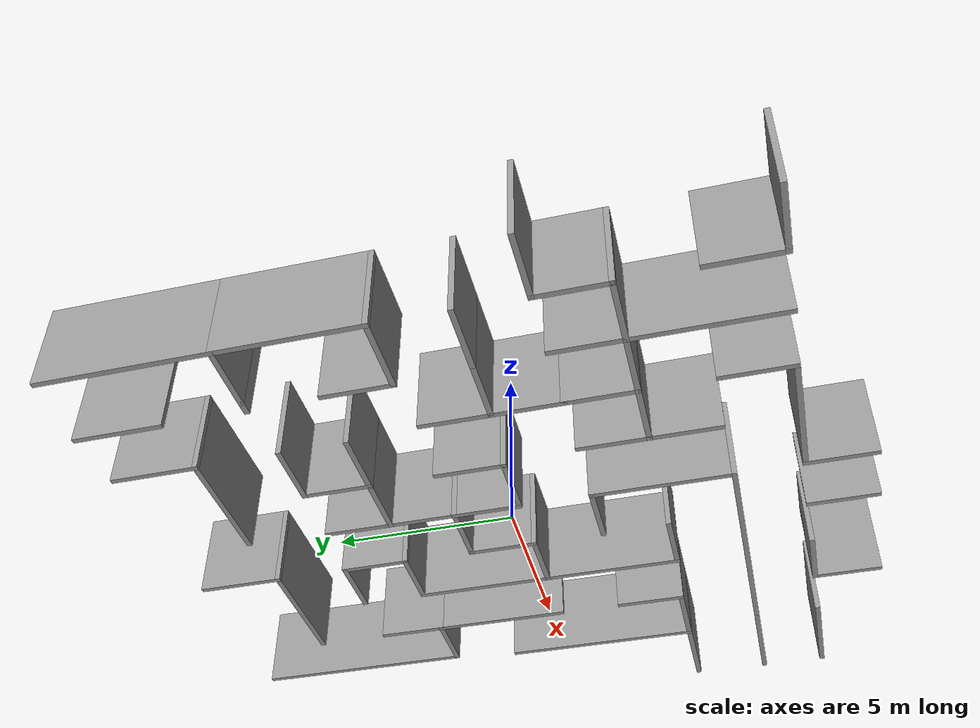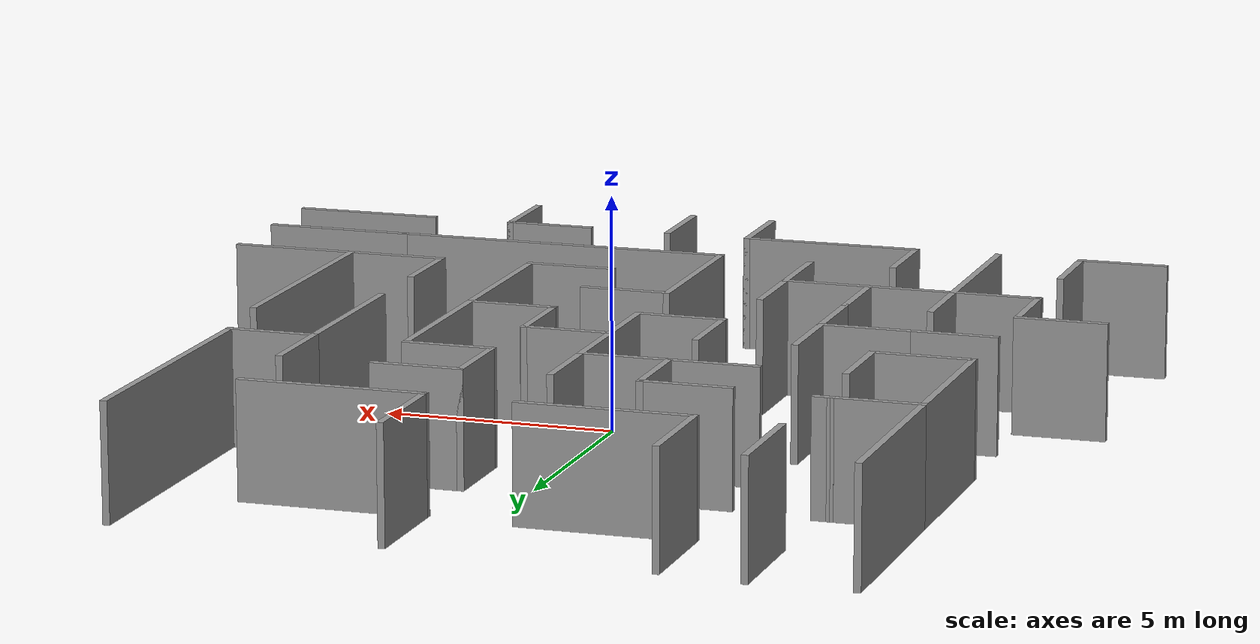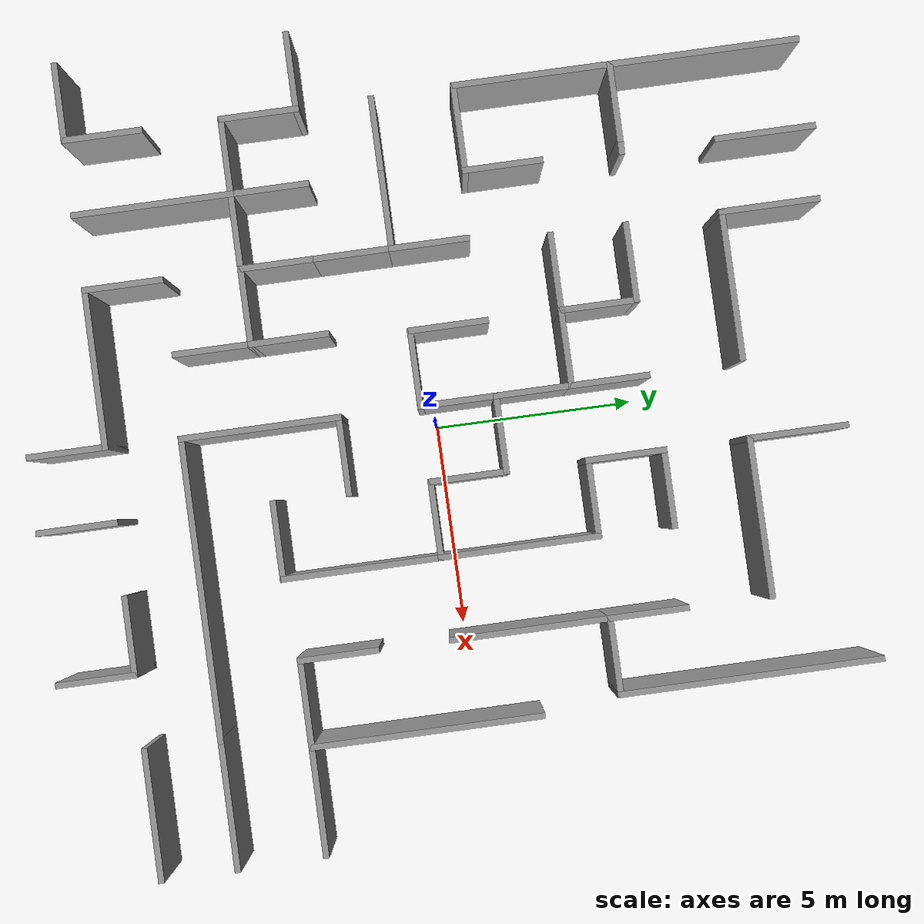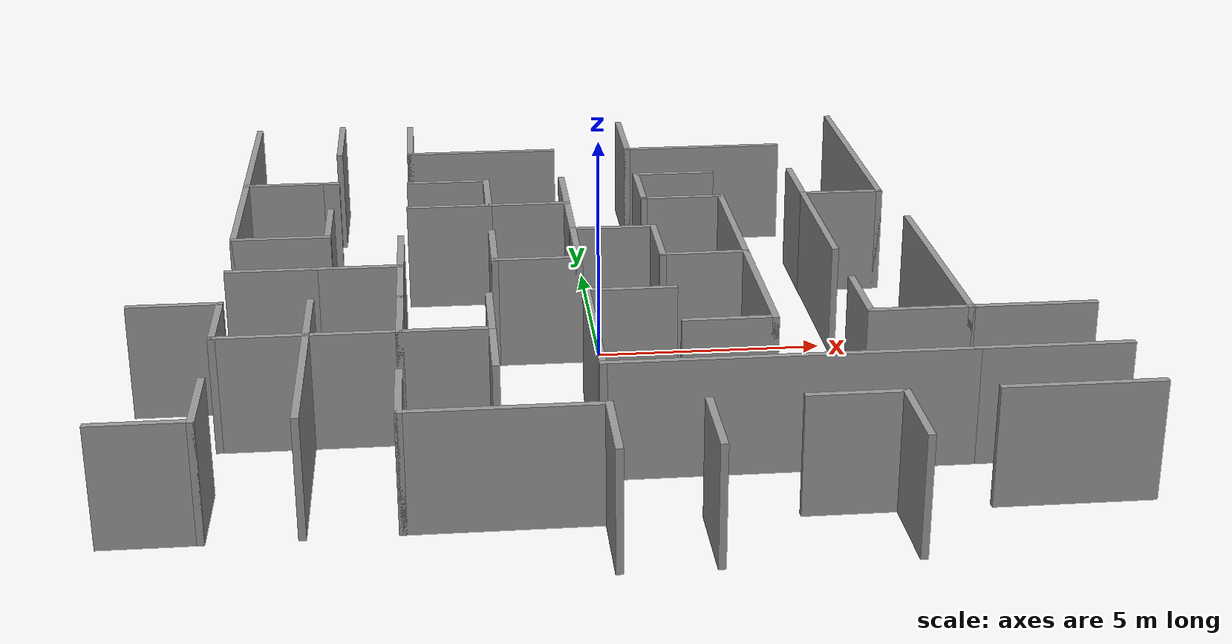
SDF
<?xml version='1.0'?>
<sdf version='1.6'>
  <model name='maze'>
    <pose frame=''>0.040424 0.106246 0 0 -0 0</pose>
    <link name='Wall_101'>
      <collision name='Wall_101_Collision'>
        <geometry>
          <box>
            <size>0.464617 0.15 2.5</size>
          </box>
        </geometry>
        <pose frame=''>0 0 1.25 0 -0 0</pose>
      </collision>
      <visual name='Wall_101_Visual'>
        <pose frame=''>0 0 1.25 0 -0 0</pose>
        <geometry>
          <box>
            <size>0.464617 0.15 2.5</size>
          </box>
        </geometry>
        <material>
          <script>
            <uri>file://media/materials/scripts/gazebo.material</uri>
            <name>Gazebo/Grey</name>
          </script>
          <ambient>1 1 1 1</ambient>
        </material>
      </visual>
      <pose frame=''>-6.14271 5.275 0 0 -0 3.12823</pose>
    </link>
    <link name='Wall_104'>
      <collision name='Wall_104_Collision'>
        <geometry>
          <box>
            <size>2.5 0.15 2.5</size>
          </box>
        </geometry>
        <pose frame=''>0 0 1.25 0 -0 0</pose>
      </collision>
      <visual name='Wall_104_Visual'>
        <pose frame=''>0 0 1.25 0 -0 0</pose>
        <geometry>
          <box>
            <size>2.5 0.15 2.5</size>
          </box>
        </geometry>
        <material>
          <script>
            <uri>file://media/materials/scripts/gazebo.material</uri>
            <name>Gazebo/Grey</name>
          </script>
          <ambient>1 1 1 1</ambient>
        </material>
      </visual>
      <pose frame=''>-5.98541 8.7979 0 0 -0 1.5708</pose>
    </link>
    <link name='Wall_107'>
      <collision name='Wall_107_Collision'>
        <geometry>
          <box>
            <size>3.75 0.15 2.5</size>
          </box>
        </geometry>
        <pose frame=''>0 0 1.25 0 -0 0</pose>
      </collision>
      <visual name='Wall_107_Visual'>
        <pose frame=''>0 0 1.25 0 -0 0</pose>
        <geometry>
          <box>
            <size>3.75 0.15 2.5</size>
          </box>
        </geometry>
        <material>
          <script>
            <uri>file://media/materials/scripts/gazebo.material</uri>
            <name>Gazebo/Grey</name>
          </script>
          <ambient>1 1 1 1</ambient>
        </material>
      </visual>
      <pose frame=''>-2.4 7.4771 0 0 -0 0</pose>
    </link>
    <link name='Wall_11'>
      <collision name='Wall_11_Collision'>
        <geometry>
          <box>
            <size>4 0.15 2.5</size>
          </box>
        </geometry>
        <pose frame=''>0 0 1.25 0 -0 0</pose>
      </collision>
      <visual name='Wall_11_Visual'>
        <pose frame=''>0 0 1.25 0 -0 0</pose>
        <geometry>
          <box>
            <size>4 0.15 2.5</size>
          </box>
        </geometry>
        <material>
          <script>
            <uri>file://media/materials/scripts/gazebo.material</uri>
            <name>Gazebo/Grey</name>
          </script>
          <ambient>1 1 1 1</ambient>
        </material>
      </visual>
      <pose frame=''>-6.25 -6.22653 0 0 -0 1.5708</pose>
    </link>
    <link name='Wall_110'>
      <collision name='Wall_110_Collision'>
        <geometry>
          <box>
            <size>2.5 0.15 2.5</size>
          </box>
        </geometry>
        <pose frame=''>0 0 1.25 0 -0 0</pose>
      </collision>
      <visual name='Wall_110_Visual'>
        <pose frame=''>0 0 1.25 0 -0 0</pose>
        <geometry>
          <box>
            <size>2.5 0.15 2.5</size>
          </box>
        </geometry>
        <material>
          <script>
            <uri>file://media/materials/scripts/gazebo.material</uri>
            <name>Gazebo/Grey</name>
          </script>
          <ambient>1 1 1 1</ambient>
        </material>
      </visual>
      <pose frame=''>-4.2 8.6521 0 0 -0 1.5708</pose>
    </link>
    <link name='Wall_113'>
      <collision name='Wall_113_Collision'>
        <geometry>
          <box>
            <size>4 0.15 2.5</size>
          </box>
        </geometry>
        <pose frame=''>0 0 1.25 0 -0 0</pose>
      </collision>
      <visual name='Wall_113_Visual'>
        <pose frame=''>0 0 1.25 0 -0 0</pose>
        <geometry>
          <box>
            <size>4 0.15 2.5</size>
          </box>
        </geometry>
        <material>
          <script>
            <uri>file://media/materials/scripts/gazebo.material</uri>
            <name>Gazebo/Grey</name>
          </script>
          <ambient>1 1 1 1</ambient>
        </material>
      </visual>
      <pose frame=''>3.275 7.3771 0 0 -0 0</pose>
    </link>
    <link name='Wall_115'>
      <collision name='Wall_115_Collision'>
        <geometry>
          <box>
            <size>2.5 0.15 2.5</size>
          </box>
        </geometry>
        <pose frame=''>0 0 1.25 0 -0 0</pose>
      </collision>
      <visual name='Wall_115_Visual'>
        <pose frame=''>0 0 1.25 0 -0 0</pose>
        <geometry>
          <box>
            <size>2.5 0.15 2.5</size>
          </box>
        </geometry>
        <material>
          <script>
            <uri>file://media/materials/scripts/gazebo.material</uri>
            <name>Gazebo/Grey</name>
          </script>
          <ambient>1 1 1 1</ambient>
        </material>
      </visual>
      <pose frame=''>1.35 8.5521 0 0 -0 1.5708</pose>
    </link>
    <link name='Wall_118'>
      <collision name='Wall_118_Collision'>
        <geometry>
          <box>
            <size>2 0.15 2.5</size>
          </box>
        </geometry>
        <pose frame=''>0 0 1.25 0 -0 0</pose>
      </collision>
      <visual name='Wall_118_Visual'>
        <pose frame=''>0 0 1.25 0 -0 0</pose>
        <geometry>
          <box>
            <size>2 0.15 2.5</size>
          </box>
        </geometry>
        <material>
          <script>
            <uri>file://media/materials/scripts/gazebo.material</uri>
            <name>Gazebo/Grey</name>
          </script>
          <ambient>1 1 1 1</ambient>
        </material>
      </visual>
      <pose frame=''>5.2 4.3521 0 0 0 -1.5708</pose>
    </link>
    <link name='Wall_119'>
      <collision name='Wall_119_Collision'>
        <geometry>
          <box>
            <size>2 0.15 2.5</size>
          </box>
        </geometry>
        <pose frame=''>0 0 1.25 0 -0 0</pose>
      </collision>
      <visual name='Wall_119_Visual'>
        <pose frame=''>0 0 1.25 0 -0 0</pose>
        <geometry>
          <box>
            <size>2 0.15 2.5</size>
          </box>
        </geometry>
        <material>
          <script>
            <uri>file://media/materials/scripts/gazebo.material</uri>
            <name>Gazebo/Grey</name>
          </script>
          <ambient>1 1 1 1</ambient>
        </material>
      </visual>
      <pose frame=''>6.125 3.4271 0 0 -0 0</pose>
    </link>
    <link name='Wall_120'>
      <collision name='Wall_120_Collision'>
        <geometry>
          <box>
            <size>6.5 0.15 2.5</size>
          </box>
        </geometry>
        <pose frame=''>0 0 1.25 0 -0 0</pose>
      </collision>
      <visual name='Wall_120_Visual'>
        <pose frame=''>0 0 1.25 0 -0 0</pose>
        <geometry>
          <box>
            <size>6.5 0.15 2.5</size>
          </box>
        </geometry>
        <material>
          <script>
            <uri>file://media/materials/scripts/gazebo.material</uri>
            <name>Gazebo/Grey</name>
          </script>
          <ambient>1 1 1 1</ambient>
        </material>
      </visual>
      <pose frame=''>7.05 6.6021 0 0 -0 1.5708</pose>
    </link>
    <link name='Wall_122'>
      <collision name='Wall_122_Collision'>
        <geometry>
          <box>
            <size>4 0.15 2.5</size>
          </box>
        </geometry>
        <pose frame=''>0 0 1.25 0 -0 0</pose>
      </collision>
      <visual name='Wall_122_Visual'>
        <pose frame=''>0 0 1.25 0 -0 0</pose>
        <geometry>
          <box>
            <size>4 0.15 2.5</size>
          </box>
        </geometry>
        <material>
          <script>
            <uri>file://media/materials/scripts/gazebo.material</uri>
            <name>Gazebo/Grey</name>
          </script>
          <ambient>1 1 1 1</ambient>
        </material>
      </visual>
      <pose frame=''>5.2 1.5021 0 0 0 -1.5708</pose>
    </link>
    <link name='Wall_124'>
      <collision name='Wall_124_Collision'>
        <geometry>
          <box>
            <size>2 0.15 2.5</size>
          </box>
        </geometry>
        <pose frame=''>0 0 1.25 0 -0 0</pose>
      </collision>
      <visual name='Wall_124_Visual'>
        <pose frame=''>0 0 1.25 0 -0 0</pose>
        <geometry>
          <box>
            <size>2 0.15 2.5</size>
          </box>
        </geometry>
        <material>
          <script>
            <uri>file://media/materials/scripts/gazebo.material</uri>
            <name>Gazebo/Grey</name>
          </script>
          <ambient>1 1 1 1</ambient>
        </material>
      </visual>
      <pose frame=''>5.2 -3.1979 0 0 0 -1.5708</pose>
    </link>
    <link name='Wall_125'>
      <collision name='Wall_125_Collision'>
        <geometry>
          <box>
            <size>2.25 0.15 2.5</size>
          </box>
        </geometry>
        <pose frame=''>0 0 1.25 0 -0 0</pose>
      </collision>
      <visual name='Wall_125_Visual'>
        <pose frame=''>0 0 1.25 0 -0 0</pose>
        <geometry>
          <box>
            <size>2.25 0.15 2.5</size>
          </box>
        </geometry>
        <material>
          <script>
            <uri>file://media/materials/scripts/gazebo.material</uri>
            <name>Gazebo/Grey</name>
          </script>
          <ambient>1 1 1 1</ambient>
        </material>
      </visual>
      <pose frame=''>6.25 -4.1229 0 0 -0 0</pose>
    </link>
    <link name='Wall_126'>
      <collision name='Wall_126_Collision'>
        <geometry>
          <box>
            <size>5.75 0.15 2.5</size>
          </box>
        </geometry>
        <pose frame=''>0 0 1.25 0 -0 0</pose>
      </collision>
      <visual name='Wall_126_Visual'>
        <pose frame=''>0 0 1.25 0 -0 0</pose>
        <geometry>
          <box>
            <size>5.75 0.15 2.5</size>
          </box>
        </geometry>
        <material>
          <script>
            <uri>file://media/materials/scripts/gazebo.material</uri>
            <name>Gazebo/Grey</name>
          </script>
          <ambient>1 1 1 1</ambient>
        </material>
      </visual>
      <pose frame=''>7.3 -1.3229 0 0 -0 1.5708</pose>
    </link>
    <link name='Wall_128'>
      <collision name='Wall_128_Collision'>
        <geometry>
          <box>
            <size>2.75 0.15 2.5</size>
          </box>
        </geometry>
        <pose frame=''>0 0 1.25 0 -0 0</pose>
      </collision>
      <visual name='Wall_128_Visual'>
        <pose frame=''>0 0 1.25 0 -0 0</pose>
        <geometry>
          <box>
            <size>2.75 0.15 2.5</size>
          </box>
        </geometry>
        <material>
          <script>
            <uri>file://media/materials/scripts/gazebo.material</uri>
            <name>Gazebo/Grey</name>
          </script>
          <ambient>1 1 1 1</ambient>
        </material>
      </visual>
      <pose frame=''>8.6 -4.1229 0 0 -0 0</pose>
    </link>
    <link name='Wall_13'>
      <collision name='Wall_13_Collision'>
        <geometry>
          <box>
            <size>2 0.15 2.5</size>
          </box>
        </geometry>
        <pose frame=''>0 0 1.25 0 -0 0</pose>
      </collision>
      <visual name='Wall_13_Visual'>
        <pose frame=''>0 0 1.25 0 -0 0</pose>
        <geometry>
          <box>
            <size>2 0.15 2.5</size>
          </box>
        </geometry>
        <material>
          <script>
            <uri>file://media/materials/scripts/gazebo.material</uri>
            <name>Gazebo/Grey</name>
          </script>
          <ambient>1 1 1 1</ambient>
        </material>
      </visual>
      <pose frame=''>-7.175 -4.30153 0 0 -0 3.14159</pose>
    </link>
    <link name='Wall_14'>
      <collision name='Wall_14_Collision'>
        <geometry>
          <box>
            <size>2 0.15 2.5</size>
          </box>
        </geometry>
        <pose frame=''>0 0 1.25 0 -0 0</pose>
      </collision>
      <visual name='Wall_14_Visual'>
        <pose frame=''>0 0 1.25 0 -0 0</pose>
        <geometry>
          <box>
            <size>2 0.15 2.5</size>
          </box>
        </geometry>
        <material>
          <script>
            <uri>file://media/materials/scripts/gazebo.material</uri>
            <name>Gazebo/Grey</name>
          </script>
          <ambient>1 1 1 1</ambient>
        </material>
      </visual>
      <pose frame=''>-8.1 -3.37653 0 0 -0 1.5708</pose>
    </link>
    <link name='Wall_15'>
      <collision name='Wall_15_Collision'>
        <geometry>
          <box>
            <size>2 0.15 2.5</size>
          </box>
        </geometry>
        <pose frame=''>0 0 1.25 0 -0 0</pose>
      </collision>
      <visual name='Wall_15_Visual'>
        <pose frame=''>0 0 1.25 0 -0 0</pose>
        <geometry>
          <box>
            <size>2 0.15 2.5</size>
          </box>
        </geometry>
        <material>
          <script>
            <uri>file://media/materials/scripts/gazebo.material</uri>
            <name>Gazebo/Grey</name>
          </script>
          <ambient>1 1 1 1</ambient>
        </material>
      </visual>
      <pose frame=''>-9.025 -2.45153 0 0 -0 3.14159</pose>
    </link>
    <link name='Wall_17'>
      <collision name='Wall_17_Collision'>
        <geometry>
          <box>
            <size>2 0.15 2.5</size>
          </box>
        </geometry>
        <pose frame=''>0 0 1.25 0 -0 0</pose>
      </collision>
      <visual name='Wall_17_Visual'>
        <pose frame=''>0 0 1.25 0 -0 0</pose>
        <geometry>
          <box>
            <size>2 0.15 2.5</size>
          </box>
        </geometry>
        <material>
          <script>
            <uri>file://media/materials/scripts/gazebo.material</uri>
            <name>Gazebo/Grey</name>
          </script>
          <ambient>1 1 1 1</ambient>
        </material>
      </visual>
      <pose frame=''>-6.25 -3.37653 0 0 -0 1.5708</pose>
    </link>
    <link name='Wall_19'>
      <collision name='Wall_19_Collision'>
        <geometry>
          <box>
            <size>2 0.15 2.5</size>
          </box>
        </geometry>
        <pose frame=''>0 0 1.25 0 -0 0</pose>
      </collision>
      <visual name='Wall_19_Visual'>
        <pose frame=''>0 0 1.25 0 -0 0</pose>
        <geometry>
          <box>
            <size>2 0.15 2.5</size>
          </box>
        </geometry>
        <material>
          <script>
            <uri>file://media/materials/scripts/gazebo.material</uri>
            <name>Gazebo/Grey</name>
          </script>
          <ambient>1 1 1 1</ambient>
        </material>
      </visual>
      <pose frame=''>-5.325 -4.30153 0 0 -0 0</pose>
    </link>
    <link name='Wall_2'>
      <collision name='Wall_2_Collision'>
        <geometry>
          <box>
            <size>2 0.15 2.5</size>
          </box>
        </geometry>
        <pose frame=''>0 0 1.25 0 -0 0</pose>
      </collision>
      <visual name='Wall_2_Visual'>
        <pose frame=''>0 0 1.25 0 -0 0</pose>
        <geometry>
          <box>
            <size>2 0.15 2.5</size>
          </box>
        </geometry>
        <material>
          <script>
            <uri>file://media/materials/scripts/gazebo.material</uri>
            <name>Gazebo/Grey</name>
          </script>
          <ambient>1 1 1 1</ambient>
        </material>
      </visual>
      <pose frame=''>-9.025 -8.15153 0 0 -0 0</pose>
    </link>
    <link name='Wall_20'>
      <collision name='Wall_20_Collision'>
        <geometry>
          <box>
            <size>2 0.15 2.5</size>
          </box>
        </geometry>
        <pose frame=''>0 0 1.25 0 -0 0</pose>
      </collision>
      <visual name='Wall_20_Visual'>
        <pose frame=''>0 0 1.25 0 -0 0</pose>
        <geometry>
          <box>
            <size>2 0.15 2.5</size>
          </box>
        </geometry>
        <material>
          <script>
            <uri>file://media/materials/scripts/gazebo.material</uri>
            <name>Gazebo/Grey</name>
          </script>
          <ambient>1 1 1 1</ambient>
        </material>
      </visual>
      <pose frame=''>-4.4 -3.37653 0 0 -0 1.5708</pose>
    </link>
    <link name='Wall_25'>
      <collision name='Wall_25_Collision'>
        <geometry>
          <box>
            <size>2 0.15 2.5</size>
          </box>
        </geometry>
        <pose frame=''>0 0 1.25 0 -0 0</pose>
      </collision>
      <visual name='Wall_25_Visual'>
        <pose frame=''>0 0 1.25 0 -0 0</pose>
        <geometry>
          <box>
            <size>2 0.15 2.5</size>
          </box>
        </geometry>
        <material>
          <script>
            <uri>file://media/materials/scripts/gazebo.material</uri>
            <name>Gazebo/Grey</name>
          </script>
          <ambient>1 1 1 1</ambient>
        </material>
      </visual>
      <pose frame=''>-4.4 -7.1979 0 0 0 -1.5708</pose>
    </link>
    <link name='Wall_27'>
      <collision name='Wall_27_Collision'>
        <geometry>
          <box>
            <size>4 0.15 2.5</size>
          </box>
        </geometry>
        <pose frame=''>0 0 1.25 0 -0 0</pose>
      </collision>
      <visual name='Wall_27_Visual'>
        <pose frame=''>0 0 1.25 0 -0 0</pose>
        <geometry>
          <box>
            <size>4 0.15 2.5</size>
          </box>
        </geometry>
        <material>
          <script>
            <uri>file://media/materials/scripts/gazebo.material</uri>
            <name>Gazebo/Grey</name>
          </script>
          <ambient>1 1 1 1</ambient>
        </material>
      </visual>
      <pose frame=''>-2.475 -8.1229 0 0 -0 0</pose>
    </link>
    <link name='Wall_28'>
      <collision name='Wall_28_Collision'>
        <geometry>
          <box>
            <size>2 0.15 2.5</size>
          </box>
        </geometry>
        <pose frame=''>0 0 1.25 0 -0 0</pose>
      </collision>
      <visual name='Wall_28_Visual'>
        <pose frame=''>0 0 1.25 0 -0 0</pose>
        <geometry>
          <box>
            <size>2 0.15 2.5</size>
          </box>
        </geometry>
        <material>
          <script>
            <uri>file://media/materials/scripts/gazebo.material</uri>
            <name>Gazebo/Grey</name>
          </script>
          <ambient>1 1 1 1</ambient>
        </material>
      </visual>
      <pose frame=''>-0.55 -9.0479 0 0 0 -1.5708</pose>
    </link>
    <link name='Wall_30'>
      <collision name='Wall_30_Collision'>
        <geometry>
          <box>
            <size>2 0.15 2.5</size>
          </box>
        </geometry>
        <pose frame=''>0 0 1.25 0 -0 0</pose>
      </collision>
      <visual name='Wall_30_Visual'>
        <pose frame=''>0 0 1.25 0 -0 0</pose>
        <geometry>
          <box>
            <size>2 0.15 2.5</size>
          </box>
        </geometry>
        <material>
          <script>
            <uri>file://media/materials/scripts/gazebo.material</uri>
            <name>Gazebo/Grey</name>
          </script>
          <ambient>1 1 1 1</ambient>
        </material>
      </visual>
      <pose frame=''>-3.475 -4.30153 0 0 -0 0</pose>
    </link>
    <link name='Wall_31'>
      <collision name='Wall_31_Collision'>
        <geometry>
          <box>
            <size>2 0.15 2.5</size>
          </box>
        </geometry>
        <pose frame=''>0 0 1.25 0 -0 0</pose>
      </collision>
      <visual name='Wall_31_Visual'>
        <pose frame=''>0 0 1.25 0 -0 0</pose>
        <geometry>
          <box>
            <size>2 0.15 2.5</size>
          </box>
        </geometry>
        <material>
          <script>
            <uri>file://media/materials/scripts/gazebo.material</uri>
            <name>Gazebo/Grey</name>
          </script>
          <ambient>1 1 1 1</ambient>
        </material>
      </visual>
      <pose frame=''>-2.55 -5.22653 0 0 0 -1.5708</pose>
    </link>
    <link name='Wall_33'>
      <collision name='Wall_33_Collision'>
        <geometry>
          <box>
            <size>2 0.15 2.5</size>
          </box>
        </geometry>
        <pose frame=''>0 0 1.25 0 -0 0</pose>
      </collision>
      <visual name='Wall_33_Visual'>
        <pose frame=''>0 0 1.25 0 -0 0</pose>
        <geometry>
          <box>
            <size>2 0.15 2.5</size>
          </box>
        </geometry>
        <material>
          <script>
            <uri>file://media/materials/scripts/gazebo.material</uri>
            <name>Gazebo/Grey</name>
          </script>
          <ambient>1 1 1 1</ambient>
        </material>
      </visual>
      <pose frame=''>-2.55 -3.37653 0 0 -0 1.5708</pose>
    </link>
    <link name='Wall_38'>
      <collision name='Wall_38_Collision'>
        <geometry>
          <box>
            <size>2 0.15 2.5</size>
          </box>
        </geometry>
        <pose frame=''>0 0 1.25 0 -0 0</pose>
      </collision>
      <visual name='Wall_38_Visual'>
        <pose frame=''>0 0 1.25 0 -0 0</pose>
        <geometry>
          <box>
            <size>2 0.15 2.5</size>
          </box>
        </geometry>
        <material>
          <script>
            <uri>file://media/materials/scripts/gazebo.material</uri>
            <name>Gazebo/Grey</name>
          </script>
          <ambient>1 1 1 1</ambient>
        </material>
      </visual>
      <pose frame=''>-4.4 -1.52653 0 0 -0 1.5708</pose>
    </link>
    <link name='Wall_40'>
      <collision name='Wall_40_Collision'>
        <geometry>
          <box>
            <size>2 0.15 2.5</size>
          </box>
        </geometry>
        <pose frame=''>0 0 1.25 0 -0 0</pose>
      </collision>
      <visual name='Wall_40_Visual'>
        <pose frame=''>0 0 1.25 0 -0 0</pose>
        <geometry>
          <box>
            <size>2 0.15 2.5</size>
          </box>
        </geometry>
        <material>
          <script>
            <uri>file://media/materials/scripts/gazebo.material</uri>
            <name>Gazebo/Grey</name>
          </script>
          <ambient>1 1 1 1</ambient>
        </material>
      </visual>
      <pose frame=''>-4.4 0.32347 0 0 -0 1.5708</pose>
    </link>
    <link name='Wall_42'>
      <collision name='Wall_42_Collision'>
        <geometry>
          <box>
            <size>2 0.15 2.5</size>
          </box>
        </geometry>
        <pose frame=''>0 0 1.25 0 -0 0</pose>
      </collision>
      <visual name='Wall_42_Visual'>
        <pose frame=''>0 0 1.25 0 -0 0</pose>
        <geometry>
          <box>
            <size>2 0.15 2.5</size>
          </box>
        </geometry>
        <material>
          <script>
            <uri>file://media/materials/scripts/gazebo.material</uri>
            <name>Gazebo/Grey</name>
          </script>
          <ambient>1 1 1 1</ambient>
        </material>
      </visual>
      <pose frame=''>-5.325 -0.60153 0 0 -0 3.14159</pose>
    </link>
    <link name='Wall_44'>
      <collision name='Wall_44_Collision'>
        <geometry>
          <box>
            <size>2 0.15 2.5</size>
          </box>
        </geometry>
        <pose frame=''>0 0 1.25 0 -0 0</pose>
      </collision>
      <visual name='Wall_44_Visual'>
        <pose frame=''>0 0 1.25 0 -0 0</pose>
        <geometry>
          <box>
            <size>2 0.15 2.5</size>
          </box>
        </geometry>
        <material>
          <script>
            <uri>file://media/materials/scripts/gazebo.material</uri>
            <name>Gazebo/Grey</name>
          </script>
          <ambient>1 1 1 1</ambient>
        </material>
      </visual>
      <pose frame=''>-7.175 -0.60153 0 0 -0 3.14159</pose>
    </link>
    <link name='Wall_47'>
      <collision name='Wall_47_Collision'>
        <geometry>
          <box>
            <size>2 0.15 2.5</size>
          </box>
        </geometry>
        <pose frame=''>0 0 1.25 0 -0 0</pose>
      </collision>
      <visual name='Wall_47_Visual'>
        <pose frame=''>0 0 1.25 0 -0 0</pose>
        <geometry>
          <box>
            <size>2 0.15 2.5</size>
          </box>
        </geometry>
        <material>
          <script>
            <uri>file://media/materials/scripts/gazebo.material</uri>
            <name>Gazebo/Grey</name>
          </script>
          <ambient>1 1 1 1</ambient>
        </material>
      </visual>
      <pose frame=''>1.3 -9.0479 0 0 0 -1.5708</pose>
    </link>
    <link name='Wall_50'>
      <collision name='Wall_50_Collision'>
        <geometry>
          <box>
            <size>2 0.15 2.5</size>
          </box>
        </geometry>
        <pose frame=''>0 0 1.25 0 -0 0</pose>
      </collision>
      <visual name='Wall_50_Visual'>
        <pose frame=''>0 0 1.25 0 -0 0</pose>
        <geometry>
          <box>
            <size>2 0.15 2.5</size>
          </box>
        </geometry>
        <material>
          <script>
            <uri>file://media/materials/scripts/gazebo.material</uri>
            <name>Gazebo/Grey</name>
          </script>
          <ambient>1 1 1 1</ambient>
        </material>
      </visual>
      <pose frame=''>4.075 -8.1229 0 0 -0 0</pose>
    </link>
    <link name='Wall_51'>
      <collision name='Wall_51_Collision'>
        <geometry>
          <box>
            <size>2 0.15 2.5</size>
          </box>
        </geometry>
        <pose frame=''>0 0 1.25 0 -0 0</pose>
      </collision>
      <visual name='Wall_51_Visual'>
        <pose frame=''>0 0 1.25 0 -0 0</pose>
        <geometry>
          <box>
            <size>2 0.15 2.5</size>
          </box>
        </geometry>
        <material>
          <script>
            <uri>file://media/materials/scripts/gazebo.material</uri>
            <name>Gazebo/Grey</name>
          </script>
          <ambient>1 1 1 1</ambient>
        </material>
      </visual>
      <pose frame=''>5 -9.0479 0 0 0 -1.5708</pose>
    </link>
    <link name='Wall_56'>
      <collision name='Wall_56_Collision'>
        <geometry>
          <box>
            <size>3.25 0.15 2.5</size>
          </box>
        </geometry>
        <pose frame=''>0 0 1.25 0 -0 0</pose>
      </collision>
      <visual name='Wall_56_Visual'>
        <pose frame=''>0 0 1.25 0 -0 0</pose>
        <geometry>
          <box>
            <size>3.25 0.15 2.5</size>
          </box>
        </geometry>
        <material>
          <script>
            <uri>file://media/materials/scripts/gazebo.material</uri>
            <name>Gazebo/Grey</name>
          </script>
          <ambient>1 1 1 1</ambient>
        </material>
      </visual>
      <pose frame=''>8.4 -8.1229 0 0 -0 0</pose>
    </link>
    <link name='Wall_59'>
      <collision name='Wall_59_Collision'>
        <geometry>
          <box>
            <size>3.25 0.15 2.5</size>
          </box>
        </geometry>
        <pose frame=''>0 0 1.25 0 -0 0</pose>
      </collision>
      <visual name='Wall_59_Visual'>
        <pose frame=''>0 0 1.25 0 -0 0</pose>
        <geometry>
          <box>
            <size>3.25 0.15 2.5</size>
          </box>
        </geometry>
        <material>
          <script>
            <uri>file://media/materials/scripts/gazebo.material</uri>
            <name>Gazebo/Grey</name>
          </script>
          <ambient>1 1 1 1</ambient>
        </material>
      </visual>
      <pose frame=''>8.4 -6.2729 0 0 -0 0</pose>
    </link>
    <link name='Wall_61'>
      <collision name='Wall_61_Collision'>
        <geometry>
          <box>
            <size>7.5 0.15 2.5</size>
          </box>
        </geometry>
        <pose frame=''>0 0 1.25 0 -0 0</pose>
      </collision>
      <visual name='Wall_61_Visual'>
        <pose frame=''>0 0 1.25 0 -0 0</pose>
        <geometry>
          <box>
            <size>7.5 0.15 2.5</size>
          </box>
        </geometry>
        <material>
          <script>
            <uri>file://media/materials/scripts/gazebo.material</uri>
            <name>Gazebo/Grey</name>
          </script>
          <ambient>1 1 1 1</ambient>
        </material>
      </visual>
      <pose frame=''>3.175 -6.2729 0 0 -0 3.14159</pose>
    </link>
    <link name='Wall_63'>
      <collision name='Wall_63_Collision'>
        <geometry>
          <box>
            <size>4 0.15 2.5</size>
          </box>
        </geometry>
        <pose frame=''>0 0 1.25 0 -0 0</pose>
      </collision>
      <visual name='Wall_63_Visual'>
        <pose frame=''>0 0 1.25 0 -0 0</pose>
        <geometry>
          <box>
            <size>4 0.15 2.5</size>
          </box>
        </geometry>
        <material>
          <script>
            <uri>file://media/materials/scripts/gazebo.material</uri>
            <name>Gazebo/Grey</name>
          </script>
          <ambient>1 1 1 1</ambient>
        </material>
      </visual>
      <pose frame=''>-0.5 -4.3479 0 0 -0 1.5708</pose>
    </link>
    <link name='Wall_64'>
      <collision name='Wall_64_Collision'>
        <geometry>
          <box>
            <size>2 0.15 2.5</size>
          </box>
        </geometry>
        <pose frame=''>0 0 1.25 0 -0 0</pose>
      </collision>
      <visual name='Wall_64_Visual'>
        <pose frame=''>0 0 1.25 0 -0 0</pose>
        <geometry>
          <box>
            <size>2 0.15 2.5</size>
          </box>
        </geometry>
        <material>
          <script>
            <uri>file://media/materials/scripts/gazebo.material</uri>
            <name>Gazebo/Grey</name>
          </script>
          <ambient>1 1 1 1</ambient>
        </material>
      </visual>
      <pose frame=''>0.425 -2.4229 0 0 -0 0</pose>
    </link>
    <link name='Wall_67'>
      <collision name='Wall_67_Collision'>
        <geometry>
          <box>
            <size>2 0.15 2.5</size>
          </box>
        </geometry>
        <pose frame=''>0 0 1.25 0 -0 0</pose>
      </collision>
      <visual name='Wall_67_Visual'>
        <pose frame=''>0 0 1.25 0 -0 0</pose>
        <geometry>
          <box>
            <size>2 0.15 2.5</size>
          </box>
        </geometry>
        <material>
          <script>
            <uri>file://media/materials/scripts/gazebo.material</uri>
            <name>Gazebo/Grey</name>
          </script>
          <ambient>1 1 1 1</ambient>
        </material>
      </visual>
      <pose frame=''>2.275 -4.2729 0 0 -0 0</pose>
    </link>
    <link name='Wall_68'>
      <collision name='Wall_68_Collision'>
        <geometry>
          <box>
            <size>4 0.15 2.5</size>
          </box>
        </geometry>
        <pose frame=''>0 0 1.25 0 -0 0</pose>
      </collision>
      <visual name='Wall_68_Visual'>
        <pose frame=''>0 0 1.25 0 -0 0</pose>
        <geometry>
          <box>
            <size>4 0.15 2.5</size>
          </box>
        </geometry>
        <material>
          <script>
            <uri>file://media/materials/scripts/gazebo.material</uri>
            <name>Gazebo/Grey</name>
          </script>
          <ambient>1 1 1 1</ambient>
        </material>
      </visual>
      <pose frame=''>3.2 -2.3479 0 0 -0 1.5708</pose>
    </link>
    <link name='Wall_69'>
      <collision name='Wall_69_Collision'>
        <geometry>
          <box>
            <size>2 0.15 2.5</size>
          </box>
        </geometry>
        <pose frame=''>0 0 1.25 0 -0 0</pose>
      </collision>
      <visual name='Wall_69_Visual'>
        <pose frame=''>0 0 1.25 0 -0 0</pose>
        <geometry>
          <box>
            <size>2 0.15 2.5</size>
          </box>
        </geometry>
        <material>
          <script>
            <uri>file://media/materials/scripts/gazebo.material</uri>
            <name>Gazebo/Grey</name>
          </script>
          <ambient>1 1 1 1</ambient>
        </material>
      </visual>
      <pose frame=''>2.275 -0.422897 0 0 -0 3.14159</pose>
    </link>
    <link name='Wall_71'>
      <collision name='Wall_71_Collision'>
        <geometry>
          <box>
            <size>2 0.15 2.5</size>
          </box>
        </geometry>
        <pose frame=''>0 0 1.25 0 -0 0</pose>
      </collision>
      <visual name='Wall_71_Visual'>
        <pose frame=''>0 0 1.25 0 -0 0</pose>
        <geometry>
          <box>
            <size>2 0.15 2.5</size>
          </box>
        </geometry>
        <material>
          <script>
            <uri>file://media/materials/scripts/gazebo.material</uri>
            <name>Gazebo/Grey</name>
          </script>
          <ambient>1 1 1 1</ambient>
        </material>
      </visual>
      <pose frame=''>1.35 0.502103 0 0 -0 1.5708</pose>
    </link>
    <link name='Wall_72'>
      <collision name='Wall_72_Collision'>
        <geometry>
          <box>
            <size>2 0.15 2.5</size>
          </box>
        </geometry>
        <pose frame=''>0 0 1.25 0 -0 0</pose>
      </collision>
      <visual name='Wall_72_Visual'>
        <pose frame=''>0 0 1.25 0 -0 0</pose>
        <geometry>
          <box>
            <size>2 0.15 2.5</size>
          </box>
        </geometry>
        <material>
          <script>
            <uri>file://media/materials/scripts/gazebo.material</uri>
            <name>Gazebo/Grey</name>
          </script>
          <ambient>1 1 1 1</ambient>
        </material>
      </visual>
      <pose frame=''>0.425 1.4271 0 0 -0 3.14159</pose>
    </link>
    <link name='Wall_74'>
      <collision name='Wall_74_Collision'>
        <geometry>
          <box>
            <size>2 0.15 2.5</size>
          </box>
        </geometry>
        <pose frame=''>0 0 1.25 0 -0 0</pose>
      </collision>
      <visual name='Wall_74_Visual'>
        <pose frame=''>0 0 1.25 0 -0 0</pose>
        <geometry>
          <box>
            <size>2 0.15 2.5</size>
          </box>
        </geometry>
        <material>
          <script>
            <uri>file://media/materials/scripts/gazebo.material</uri>
            <name>Gazebo/Grey</name>
          </script>
          <ambient>1 1 1 1</ambient>
        </material>
      </visual>
      <pose frame=''>-0.5 0.502103 0 0 0 -1.5708</pose>
    </link>
    <link name='Wall_75'>
      <collision name='Wall_75_Collision'>
        <geometry>
          <box>
            <size>2 0.15 2.5</size>
          </box>
        </geometry>
        <pose frame=''>0 0 1.25 0 -0 0</pose>
      </collision>
      <visual name='Wall_75_Visual'>
        <pose frame=''>0 0 1.25 0 -0 0</pose>
        <geometry>
          <box>
            <size>2 0.15 2.5</size>
          </box>
        </geometry>
        <material>
          <script>
            <uri>file://media/materials/scripts/gazebo.material</uri>
            <name>Gazebo/Grey</name>
          </script>
          <ambient>1 1 1 1</ambient>
        </material>
      </visual>
      <pose frame=''>-1.425 -0.422897 0 0 -0 3.14159</pose>
    </link>
    <link name='Wall_76'>
      <collision name='Wall_76_Collision'>
        <geometry>
          <box>
            <size>2 0.15 2.5</size>
          </box>
        </geometry>
        <pose frame=''>0 0 1.25 0 -0 0</pose>
      </collision>
      <visual name='Wall_76_Visual'>
        <pose frame=''>0 0 1.25 0 -0 0</pose>
        <geometry>
          <box>
            <size>2 0.15 2.5</size>
          </box>
        </geometry>
        <material>
          <script>
            <uri>file://media/materials/scripts/gazebo.material</uri>
            <name>Gazebo/Grey</name>
          </script>
          <ambient>1 1 1 1</ambient>
        </material>
      </visual>
      <pose frame=''>-2.35 0.502103 0 0 -0 1.5708</pose>
    </link>
    <link name='Wall_78'>
      <collision name='Wall_78_Collision'>
        <geometry>
          <box>
            <size>2 0.15 2.5</size>
          </box>
        </geometry>
        <pose frame=''>0 0 1.25 0 -0 0</pose>
      </collision>
      <visual name='Wall_78_Visual'>
        <pose frame=''>0 0 1.25 0 -0 0</pose>
        <geometry>
          <box>
            <size>2 0.15 2.5</size>
          </box>
        </geometry>
        <material>
          <script>
            <uri>file://media/materials/scripts/gazebo.material</uri>
            <name>Gazebo/Grey</name>
          </script>
          <ambient>1 1 1 1</ambient>
        </material>
      </visual>
      <pose frame=''>-0.5 2.3521 0 0 -0 1.5708</pose>
    </link>
    <link name='Wall_79'>
      <collision name='Wall_79_Collision'>
        <geometry>
          <box>
            <size>2 0.15 2.5</size>
          </box>
        </geometry>
        <pose frame=''>0 0 1.25 0 -0 0</pose>
      </collision>
      <visual name='Wall_79_Visual'>
        <pose frame=''>0 0 1.25 0 -0 0</pose>
        <geometry>
          <box>
            <size>2 0.15 2.5</size>
          </box>
        </geometry>
        <material>
          <script>
            <uri>file://media/materials/scripts/gazebo.material</uri>
            <name>Gazebo/Grey</name>
          </script>
          <ambient>1 1 1 1</ambient>
        </material>
      </visual>
      <pose frame=''>-1.425 3.2771 0 0 -0 3.14159</pose>
    </link>
    <link name='Wall_8'>
      <collision name='Wall_8_Collision'>
        <geometry>
          <box>
            <size>2 0.15 2.5</size>
          </box>
        </geometry>
        <pose frame=''>0 0 1.25 0 -0 0</pose>
      </collision>
      <visual name='Wall_8_Visual'>
        <pose frame=''>0 0 1.25 0 -0 0</pose>
        <geometry>
          <box>
            <size>2 0.15 2.5</size>
          </box>
        </geometry>
        <material>
          <script>
            <uri>file://media/materials/scripts/gazebo.material</uri>
            <name>Gazebo/Grey</name>
          </script>
          <ambient>1 1 1 1</ambient>
        </material>
      </visual>
      <pose frame=''>-8.1 -7.22653 0 0 -0 1.5708</pose>
    </link>
    <link name='Wall_80'>
      <collision name='Wall_80_Collision'>
        <geometry>
          <box>
            <size>2 0.15 2.5</size>
          </box>
        </geometry>
        <pose frame=''>0 0 1.25 0 -0 0</pose>
      </collision>
      <visual name='Wall_80_Visual'>
        <pose frame=''>0 0 1.25 0 -0 0</pose>
        <geometry>
          <box>
            <size>2 0.15 2.5</size>
          </box>
        </geometry>
        <material>
          <script>
            <uri>file://media/materials/scripts/gazebo.material</uri>
            <name>Gazebo/Grey</name>
          </script>
          <ambient>1 1 1 1</ambient>
        </material>
      </visual>
      <pose frame=''>-2.35 4.2021 0 0 -0 1.5708</pose>
    </link>
    <link name='Wall_81'>
      <collision name='Wall_81_Collision'>
        <geometry>
          <box>
            <size>2 0.15 2.5</size>
          </box>
        </geometry>
        <pose frame=''>0 0 1.25 0 -0 0</pose>
      </collision>
      <visual name='Wall_81_Visual'>
        <pose frame=''>0 0 1.25 0 -0 0</pose>
        <geometry>
          <box>
            <size>2 0.15 2.5</size>
          </box>
        </geometry>
        <material>
          <script>
            <uri>file://media/materials/scripts/gazebo.material</uri>
            <name>Gazebo/Grey</name>
          </script>
          <ambient>1 1 1 1</ambient>
        </material>
      </visual>
      <pose frame=''>-3.275 5.1271 0 0 -0 3.14159</pose>
    </link>
    <link name='Wall_83'>
      <collision name='Wall_83_Collision'>
        <geometry>
          <box>
            <size>2 0.15 2.5</size>
          </box>
        </geometry>
        <pose frame=''>0 0 1.25 0 -0 0</pose>
      </collision>
      <visual name='Wall_83_Visual'>
        <pose frame=''>0 0 1.25 0 -0 0</pose>
        <geometry>
          <box>
            <size>2 0.15 2.5</size>
          </box>
        </geometry>
        <material>
          <script>
            <uri>file://media/materials/scripts/gazebo.material</uri>
            <name>Gazebo/Grey</name>
          </script>
          <ambient>1 1 1 1</ambient>
        </material>
      </visual>
      <pose frame=''>-3.275 3.2771 0 0 -0 3.14159</pose>
    </link>
    <link name='Wall_85'>
      <collision name='Wall_85_Collision'>
        <geometry>
          <box>
            <size>2 0.15 2.5</size>
          </box>
        </geometry>
        <pose frame=''>0 0 1.25 0 -0 0</pose>
      </collision>
      <visual name='Wall_85_Visual'>
        <pose frame=''>0 0 1.25 0 -0 0</pose>
        <geometry>
          <box>
            <size>2 0.15 2.5</size>
          </box>
        </geometry>
        <material>
          <script>
            <uri>file://media/materials/scripts/gazebo.material</uri>
            <name>Gazebo/Grey</name>
          </script>
          <ambient>1 1 1 1</ambient>
        </material>
      </visual>
      <pose frame=''>-0.5 4.2021 0 0 -0 1.5708</pose>
    </link>
    <link name='Wall_87'>
      <collision name='Wall_87_Collision'>
        <geometry>
          <box>
            <size>4 0.15 2.5</size>
          </box>
        </geometry>
        <pose frame=''>0 0 1.25 0 -0 0</pose>
      </collision>
      <visual name='Wall_87_Visual'>
        <pose frame=''>0 0 1.25 0 -0 0</pose>
        <geometry>
          <box>
            <size>4 0.15 2.5</size>
          </box>
        </geometry>
        <material>
          <script>
            <uri>file://media/materials/scripts/gazebo.material</uri>
            <name>Gazebo/Grey</name>
          </script>
          <ambient>1 1 1 1</ambient>
        </material>
      </visual>
      <pose frame=''>3.2 1.5021 0 0 -0 1.5708</pose>
    </link>
    <link name='Wall_88'>
      <collision name='Wall_88_Collision'>
        <geometry>
          <box>
            <size>2 0.15 2.5</size>
          </box>
        </geometry>
        <pose frame=''>0 0 1.25 0 -0 0</pose>
      </collision>
      <visual name='Wall_88_Visual'>
        <pose frame=''>0 0 1.25 0 -0 0</pose>
        <geometry>
          <box>
            <size>2 0.15 2.5</size>
          </box>
        </geometry>
        <material>
          <script>
            <uri>file://media/materials/scripts/gazebo.material</uri>
            <name>Gazebo/Grey</name>
          </script>
          <ambient>1 1 1 1</ambient>
        </material>
      </visual>
      <pose frame=''>2.275 3.4271 0 0 -0 3.14159</pose>
    </link>
    <link name='Wall_89'>
      <collision name='Wall_89_Collision'>
        <geometry>
          <box>
            <size>2 0.15 2.5</size>
          </box>
        </geometry>
        <pose frame=''>0 0 1.25 0 -0 0</pose>
      </collision>
      <visual name='Wall_89_Visual'>
        <pose frame=''>0 0 1.25 0 -0 0</pose>
        <geometry>
          <box>
            <size>2 0.15 2.5</size>
          </box>
        </geometry>
        <material>
          <script>
            <uri>file://media/materials/scripts/gazebo.material</uri>
            <name>Gazebo/Grey</name>
          </script>
          <ambient>1 1 1 1</ambient>
        </material>
      </visual>
      <pose frame=''>1.35 4.3521 0 0 -0 1.5708</pose>
    </link>
    <link name='Wall_90'>
      <collision name='Wall_90_Collision'>
        <geometry>
          <box>
            <size>2 0.15 2.5</size>
          </box>
        </geometry>
        <pose frame=''>0 0 1.25 0 -0 0</pose>
      </collision>
      <visual name='Wall_90_Visual'>
        <pose frame=''>0 0 1.25 0 -0 0</pose>
        <geometry>
          <box>
            <size>2 0.15 2.5</size>
          </box>
        </geometry>
        <material>
          <script>
            <uri>file://media/materials/scripts/gazebo.material</uri>
            <name>Gazebo/Grey</name>
          </script>
          <ambient>1 1 1 1</ambient>
        </material>
      </visual>
      <pose frame=''>2.275 5.2771 0 0 -0 0</pose>
    </link>
    <link name='Wall_94'>
      <collision name='Wall_94_Collision'>
        <geometry>
          <box>
            <size>2 0.15 2.5</size>
          </box>
        </geometry>
        <pose frame=''>0 0 1.25 0 -0 0</pose>
      </collision>
      <visual name='Wall_94_Visual'>
        <pose frame=''>0 0 1.25 0 -0 0</pose>
        <geometry>
          <box>
            <size>2 0.15 2.5</size>
          </box>
        </geometry>
        <material>
          <script>
            <uri>file://media/materials/scripts/gazebo.material</uri>
            <name>Gazebo/Grey</name>
          </script>
          <ambient>1 1 1 1</ambient>
        </material>
      </visual>
      <pose frame=''>-6.05 2.3521 0 0 0 -1.5708</pose>
    </link>
    <link name='Wall_95'>
      <collision name='Wall_95_Collision'>
        <geometry>
          <box>
            <size>2.25 0.15 2.5</size>
          </box>
        </geometry>
        <pose frame=''>0 0 1.25 0 -0 0</pose>
      </collision>
      <visual name='Wall_95_Visual'>
        <pose frame=''>0 0 1.25 0 -0 0</pose>
        <geometry>
          <box>
            <size>2.25 0.15 2.5</size>
          </box>
        </geometry>
        <material>
          <script>
            <uri>file://media/materials/scripts/gazebo.material</uri>
            <name>Gazebo/Grey</name>
          </script>
          <ambient>1 1 1 1</ambient>
        </material>
      </visual>
      <pose frame=''>-7.1 1.4271 0 0 -0 3.14159</pose>
    </link>
    <link name='Wall_96'>
      <collision name='Wall_96_Collision'>
        <geometry>
          <box>
            <size>4 0.15 2.5</size>
          </box>
        </geometry>
        <pose frame=''>0 0 1.25 0 -0 0</pose>
      </collision>
      <visual name='Wall_96_Visual'>
        <pose frame=''>0 0 1.25 0 -0 0</pose>
        <geometry>
          <box>
            <size>4 0.15 2.5</size>
          </box>
        </geometry>
        <material>
          <script>
            <uri>file://media/materials/scripts/gazebo.material</uri>
            <name>Gazebo/Grey</name>
          </script>
          <ambient>1 1 1 1</ambient>
        </material>
      </visual>
      <pose frame=''>-8.15 3.3521 0 0 -0 1.5708</pose>
    </link>
    <link name='Wall_97'>
      <collision name='Wall_97_Collision'>
        <geometry>
          <box>
            <size>2 0.15 2.5</size>
          </box>
        </geometry>
        <pose frame=''>0 0 1.25 0 -0 0</pose>
      </collision>
      <visual name='Wall_97_Visual'>
        <pose frame=''>0 0 1.25 0 -0 0</pose>
        <geometry>
          <box>
            <size>2 0.15 2.5</size>
          </box>
        </geometry>
        <material>
          <script>
            <uri>file://media/materials/scripts/gazebo.material</uri>
            <name>Gazebo/Grey</name>
          </script>
          <ambient>1 1 1 1</ambient>
        </material>
      </visual>
      <pose frame=''>-7.225 5.2771 0 0 -0 0</pose>
    </link>
    <link name='Wall_99'>
      <collision name='Wall_99_Collision'>
        <geometry>
          <box>
            <size>4.75 0.15 2.5</size>
          </box>
        </geometry>
        <pose frame=''>0 0 1.25 0 -0 0</pose>
      </collision>
      <visual name='Wall_99_Visual'>
        <pose frame=''>0 0 1.25 0 -0 0</pose>
        <geometry>
          <box>
            <size>4.75 0.15 2.5</size>
          </box>
        </geometry>
        <material>
          <script>
            <uri>file://media/materials/scripts/gazebo.material</uri>
            <name>Gazebo/Grey</name>
          </script>
          <ambient>1 1 1 1</ambient>
        </material>
      </visual>
      <pose frame=''>-8.15 7.5771 0 0 -0 1.5708</pose>
    </link>
    <static>1</static>
  </model>
</sdf>
